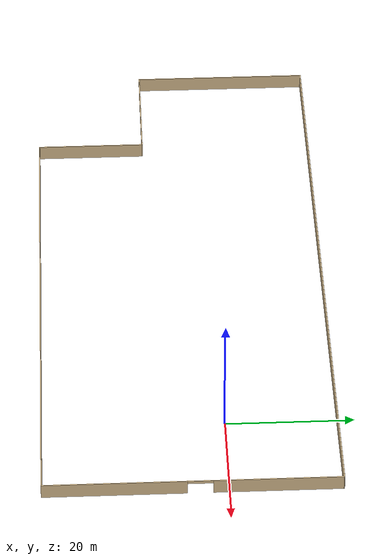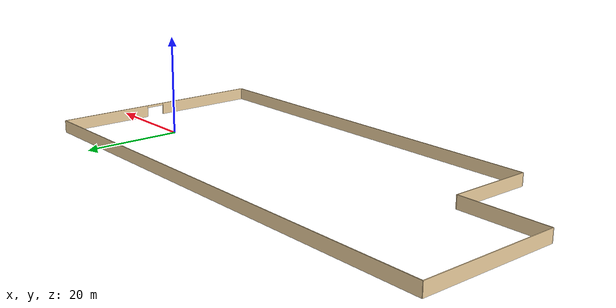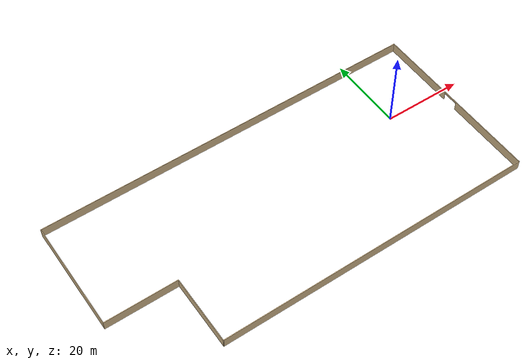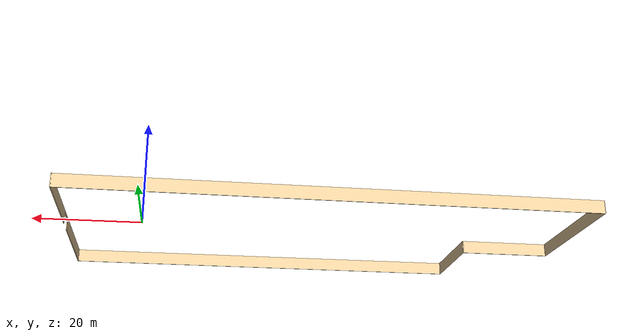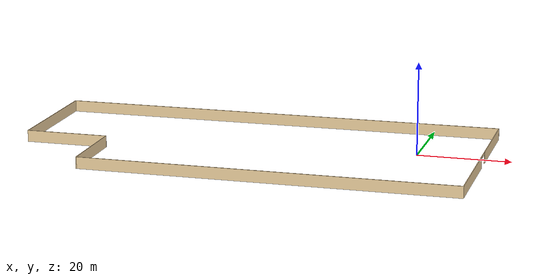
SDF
<?xml version='1.0'?>
<sdf version='1.6'>
  <model name='siteMape'>
    <pose frame=''>-34.373 -5.49402 0 0 -0 0</pose>
    <link name='Wall_0'>
      <collision name='Wall_0_Collision'>
        <geometry>
          <box>
            <size>98.1005 0.15 2.5</size>
          </box>
        </geometry>
        <pose frame=''>0 0 1.25 0 -0 0</pose>
      </collision>
      <visual name='Wall_0_Visual'>
        <pose frame=''>0 0 1.25 0 -0 0</pose>
        <geometry>
          <box>
            <size>98.1005 0.15 2.5</size>
          </box>
        </geometry>
        <material>
          <script>
            <uri>file://media/materials/scripts/gazebo.material</uri>
            <name>Gazebo/Grey</name>
          </script>
          <ambient>0.921569 0.807843 0.615686 1</ambient>
        </material>
        <meta>
          <layer>0</layer>
        </meta>
      </visual>
      <pose frame=''>0 22.647 0 0 -0 0.003124</pose>
    </link>
    <link name='Wall_1'>
      <pose frame=''>48.9749 -0.000115 0 0 0 -1.5708</pose>
      <visual name='Wall_1_Visual_0'>
        <pose frame=''>-12.9834 0 1.25 0 -0 0</pose>
        <geometry>
          <box>
            <size>19.7831 0.15 2.5</size>
          </box>
        </geometry>
        <material>
          <script>
            <uri>file://media/materials/scripts/gazebo.material</uri>
            <name>Gazebo/Grey</name>
          </script>
          <ambient>0.921569 0.807843 0.615686 1</ambient>
        </material>
        <meta>
          <layer>0</layer>
        </meta>
      </visual>
      <collision name='Wall_1_Collision_0'>
        <geometry>
          <box>
            <size>19.7831 0.15 2.5</size>
          </box>
        </geometry>
        <pose frame=''>-12.9834 0 1.25 0 -0 0</pose>
      </collision>
      <visual name='Wall_1_Visual_1'>
        <pose frame=''>11.8416 0 1.25 0 -0 0</pose>
        <geometry>
          <box>
            <size>22.0669 0.15 2.5</size>
          </box>
        </geometry>
        <material>
          <script>
            <uri>file://media/materials/scripts/gazebo.material</uri>
            <name>Gazebo/Grey</name>
          </script>
          <ambient>0.921569 0.807843 0.615686 1</ambient>
        </material>
        <meta>
          <layer>0</layer>
        </meta>
      </visual>
      <collision name='Wall_1_Collision_1'>
        <geometry>
          <box>
            <size>22.0669 0.15 2.5</size>
          </box>
        </geometry>
        <pose frame=''>11.8416 0 1.25 0 -0 0</pose>
      </collision>
      <visual name='Wall_1_Visual_2'>
        <pose frame=''>-1.14186 0 2.25 0 -0 0</pose>
        <geometry>
          <box>
            <size>3.9 0.15 0.5</size>
          </box>
        </geometry>
        <material>
          <script>
            <uri>file://media/materials/scripts/gazebo.material</uri>
            <name>Gazebo/Grey</name>
          </script>
          <ambient>0.921569 0.807843 0.615686 1</ambient>
        </material>
        <meta>
          <layer>0</layer>
        </meta>
      </visual>
      <collision name='Wall_1_Collision_2'>
        <geometry>
          <box>
            <size>3.9 0.15 0.5</size>
          </box>
        </geometry>
        <pose frame=''>-1.14186 0 2.25 0 -0 0</pose>
      </collision>
    </link>
    <link name='Wall_2'>
      <collision name='Wall_2_Collision'>
        <geometry>
          <box>
            <size>80.25 0.15 2.5</size>
          </box>
        </geometry>
        <pose frame=''>0 0 1.25 0 -0 0</pose>
      </collision>
      <visual name='Wall_2_Visual'>
        <pose frame=''>0 0 1.25 0 -0 0</pose>
        <geometry>
          <box>
            <size>80.25 0.15 2.5</size>
          </box>
        </geometry>
        <material>
          <script>
            <uri>file://media/materials/scripts/gazebo.material</uri>
            <name>Gazebo/Grey</name>
          </script>
          <ambient>0.921569 0.807843 0.615686 1</ambient>
        </material>
        <meta>
          <layer>0</layer>
        </meta>
      </visual>
      <pose frame=''>8.92477 -22.8002 0 0 -0 3.14159</pose>
    </link>
    <link name='Wall_3'>
      <collision name='Wall_3_Collision'>
        <geometry>
          <box>
            <size>17.5 0.15 2.5</size>
          </box>
        </geometry>
        <pose frame=''>0 0 1.25 0 -0 0</pose>
      </collision>
      <visual name='Wall_3_Visual'>
        <pose frame=''>0 0 1.25 0 -0 0</pose>
        <geometry>
          <box>
            <size>17.5 0.15 2.5</size>
          </box>
        </geometry>
        <material>
          <script>
            <uri>file://media/materials/scripts/gazebo.material</uri>
            <name>Gazebo/Grey</name>
          </script>
          <ambient>0.921569 0.807843 0.615686 1</ambient>
        </material>
        <meta>
          <layer>0</layer>
        </meta>
      </visual>
      <pose frame=''>-31.1252 -14.1252 0 0 -0 1.5708</pose>
    </link>
    <link name='Wall_4'>
      <collision name='Wall_4_Collision'>
        <geometry>
          <box>
            <size>18 0.15 2.5</size>
          </box>
        </geometry>
        <pose frame=''>0 0 1.25 0 -0 0</pose>
      </collision>
      <visual name='Wall_4_Visual'>
        <pose frame=''>0 0 1.25 0 -0 0</pose>
        <geometry>
          <box>
            <size>18 0.15 2.5</size>
          </box>
        </geometry>
        <material>
          <script>
            <uri>file://media/materials/scripts/gazebo.material</uri>
            <name>Gazebo/Grey</name>
          </script>
          <ambient>0.921569 0.807843 0.615686 1</ambient>
        </material>
        <meta>
          <layer>0</layer>
        </meta>
      </visual>
      <pose frame=''>-40.0501 -5.45012 0 0 -0 3.14158</pose>
    </link>
    <link name='Wall_5'>
      <collision name='Wall_5_Collision'>
        <geometry>
          <box>
            <size>28.094 0.15 2.5</size>
          </box>
        </geometry>
        <pose frame=''>0 0 1.25 0 -0 0</pose>
      </collision>
      <visual name='Wall_5_Visual'>
        <pose frame=''>0 0 1.25 0 -0 0</pose>
        <geometry>
          <box>
            <size>28.094 0.15 2.5</size>
          </box>
        </geometry>
        <material>
          <script>
            <uri>file://media/materials/scripts/gazebo.material</uri>
            <name>Gazebo/Grey</name>
          </script>
          <ambient>0.921569 0.807843 0.615686 1</ambient>
        </material>
        <meta>
          <layer>0</layer>
        </meta>
      </visual>
      <pose frame=''>-48.975 8.52202 0 0 -0 1.5708</pose>
    </link>
    <static>1</static>
  </model>
</sdf>
